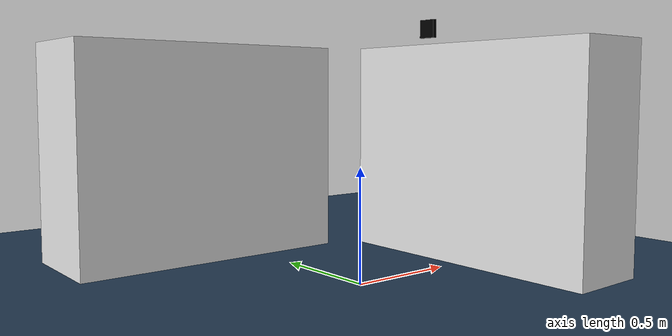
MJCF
<mujoco model="World">
    <option integrator="implicitfast" cone="elliptic" solver="CG" noslip_iterations="2">
        <flag warmstart="disable" multiccd="enable"/>
    </option>
    <asset>
        <texture type="skybox" builtin="flat" rgb1="1 1 1" rgb2="0 0 0" width="512" height="512"/>
        <texture name="grid" type="2d" builtin="checker" width="512" height="512" rgb1=".1 .2 .3" rgb2=".2 .3 .4"/>
        <material name="grid" texture="grid" texrepeat="0.5 0.5" texuniform="true" specular="0" shininess="0"
                  reflectance="0" emission="1"/>
    </asset>
    <worldbody>
        <geom name="floor" size="20 20 .05" type="plane" material="grid" condim="3"/>
        <light pos="-0.5 0.5 5" dir="0 0 -1" castshadow="false" diffuse="1 1 1"/>
        <body name="body_cam" pos="0.4 0 1.1" xyaxes="0 -1 0 0 0 1" mocap="true">
            <camera name="cam" fovy="90"/>
            <geom name="geom_cam" size="0.04 0.04 0.01" type="box" rgba="0 0 0 1" contype="2" conaffinity="2"/>
        </body>
        <body name="scene" pos="0 0 0">
        </body>

        <body name="table_front" pos="0.8 0 0.525">
            <geom name="table_front" size="0.2 0.68 0.525" type="box" rgba="0.9 0.9 0.9 1"/>
        </body>

        <body name="table_left" pos="-0.25 1 0.525">
            <geom name="table_left" size="0.68 0.25 0.525" type="box" rgba="0.9 0.9 0.9 1"/>
        </body>

    </worldbody>
</mujoco>
